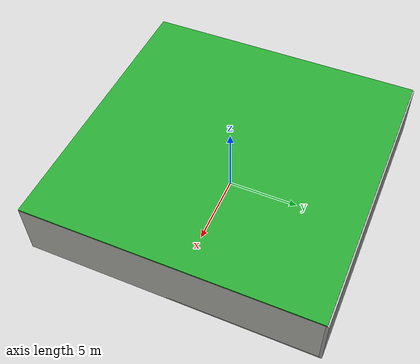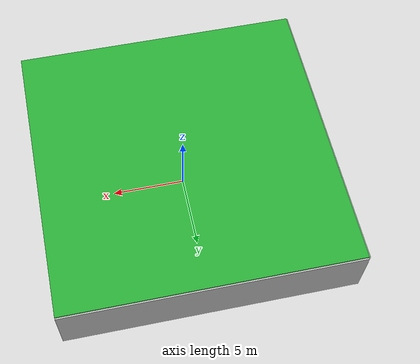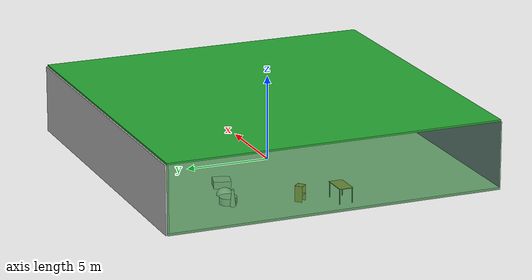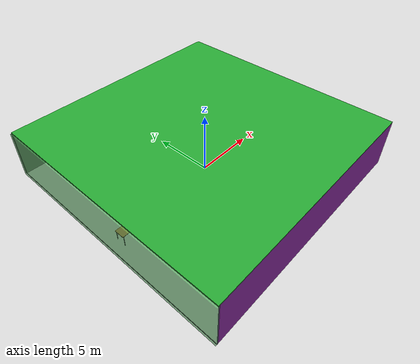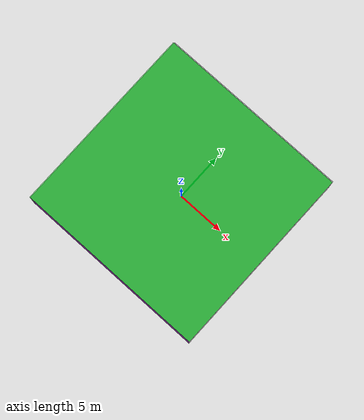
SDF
<sdf version="1.4">
 <world name="default">
  <physics type="ode">
   <max_step_size>0.001</max_step_size>
   <real_time_factor>1</real_time_factor>
   <real_time_update_rate>1000</real_time_update_rate>
   <gravity>0 0 -9.8</gravity>
  </physics>
  <scene><ambient>0.4 0.4 0.4 1</ambient><background>0.7 0.7 0.7 1</background><shadows>1</shadows></scene>
  <model name="Surrounding">
   <static>1</static>
   <link name="Ceiling">
    <collision name="Ceiling_Collision"><geometry><box><size>20 20 0.1</size></box></geometry></collision>
    <visual name="Ceiling_Visual">
     <geometry><box><size>20 20 0.1</size></box></geometry>
     <material>
      <script><uri>file://media/materials/scripts/gazebo.material</uri><name>Gazebo/Green</name></script>
     </material>
    </visual>
    <pose>0 0 4.05 0 0 0</pose>
   </link>
   <link name="Wall_South">
    <collision name="Wall_South_Collision">
     <geometry><box><size>20 0 4</size></box></geometry>
     <pose>0 0 2 0 -0 0</pose>
    </collision>
    <visual name="Wall_South_Visual">
     <pose>0 0 2 0 -0 0</pose>
     <geometry><box><size>20 0 4</size></box></geometry>
     <material>
      <script><uri>file://media/materials/scripts/gazebo.material</uri><name>Gazebo/PurpleGlow</name></script>
     </material>
    </visual>
    <velocity_decay><linear>0</linear><angular>0</angular></velocity_decay>
    <pose>0 -10 0 0 -0 0</pose>
   </link>
   <link name="Wall_East">
    <collision name="Wall_21_Collision">
     <geometry><box><size>20 0 4</size></box></geometry>
     <pose>0 0 2 0 -0 0</pose>
    </collision>
    <visual name="Wall_21_Visual">
     <pose>0 0 2 0 -0 0</pose>
     <geometry><box><size>20 0 4</size></box></geometry>
     <material>
      <script><uri>file://media/materials/scripts/gazebo.material</uri><name>Gazebo/CeilingTiled</name></script>
     </material>
    </visual>
    <velocity_decay><linear>0</linear><angular>0</angular></velocity_decay>
    <pose>10 0 0 0 -0 1.5708</pose>
   </link>
   <link name="Wall_North">
    <collision name="Wall_22_Collision">
     <geometry><box><size>20 0.2 4</size></box></geometry>
     <pose>0 0 2 0 -0 0</pose>
    </collision>
    <visual name="Wall_22_Visual">
     <pose>0 0 2 0 -0 0</pose>
     <geometry><box><size>20 0.2 4</size></box></geometry>
     <material>
      <script><uri>file://media/materials/scripts/gazebo.material</uri><name>Gazebo/LightOn</name></script>
     </material>
    </visual>
    <velocity_decay><linear>0</linear><angular>0</angular></velocity_decay>
    <pose>0 10 0 0 -0 0</pose>
   </link>
   <link name="Wall_West">
    <collision name="Wall_23_Collision">
     <geometry><box><size>20 0.2 4</size></box></geometry>
     <pose>0 0 2 0 -0 0</pose>
    </collision>
    <visual name="Wall_23_Visual">
     <pose>0 0 2 0 -0 0</pose>
     <geometry><box><size>20 0.2 4</size></box></geometry>
     <material>
      <script><uri>file://media/materials/scripts/gazebo.material</uri><name>Gazebo/GreenTransparent</name></script>
     </material>
    </visual>
    <velocity_decay><linear>0</linear><angular>0</angular></velocity_decay>
    <pose>-10 0 0 0 0 -1.5708</pose>
   </link>
   <link name="Ground_link">
    <collision name="collision">
     <pose>0 0 .05 0 -0 0</pose>
     <geometry><box><size>20 20 0.1</size></box></geometry>
    </collision>
    <visual name="visual">
     <pose>0 0 .05 0 -0 0</pose>
     <geometry><box><size>20 20 0.1</size></box></geometry>
     <material>
      <script><uri>file://media/materials/scripts/gazebo.material</uri><name>Gazebo/JointAnchor</name></script>
     </material>
    </visual>
   </link>
   <static>1</static>
  </model>
  <spherical_coordinates>
   <surface_model>EARTH_WGS84</surface_model>
   <latitude_deg>0</latitude_deg>
   <longitude_deg>0</longitude_deg>
   <elevation>0</elevation>
   <heading_deg>0</heading_deg>
  </spherical_coordinates>
  <light name="lightball_0" type="diffuse">
   <diffuse>0.8 0.8 0.8 1</diffuse>
   <specular>0.2 0.2 0.2 1</specular>
   <attenuation>
    <range>100</range>
    <constant>0.7</constant>
    <linear>0.01</linear>
    <quadratic>0.001</quadratic>
   </attenuation>
   <direction>-0.5 0.1 -0.9</direction>
   <pose>-1.20890650081 -3.73436691847 0.515393046193 0 0 0</pose>
  </light>
  <light name="lightball_1" type="diffuse">
   <diffuse>0.8 0.8 0.8 1</diffuse>
   <specular>0.2 0.2 0.2 1</specular>
   <attenuation>
    <range>100</range>
    <constant>0.7</constant>
    <linear>0.01</linear>
    <quadratic>0.001</quadratic>
   </attenuation>
   <direction>-0.5 0.1 -0.9</direction>
   <pose>0.155507447531 9.12810298338 2.90833837039 0 0 0</pose>
  </light>
  <include><uri>model://table</uri><pose>-8.52752826149 -0.870437588901 0 0 0 0.000795488991016</pose></include>
  <include><uri>model://cabinet</uri><pose>-7.78691960371 1.26942140128 0 0 0 0.730052209256</pose></include>
  <include>
   <uri>model://construction_cone</uri>
   <pose>-7.15348303847 5.05274768871 0 0 0 0.737531976425</pose>
  </include>
  <include>
   <uri>model://textured_shapes</uri>
   <pose>-5.1916877066 4.75124941717 0 0 0 1.31263187532</pose>
  </include>
  <include>
   <uri>model://construction_cone</uri>
   <pose>2.25931219414 -5.03261936336 0 0 0 0.502923984623</pose>
  </include>
  <include><uri>model://cabinet</uri><pose>8.45122183762 -6.3227474696 0 0 0 0.47563618193</pose></include>
 </world>
</sdf>

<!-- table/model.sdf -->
<sdf version="1.5">
  <model name="table">
    <static>true</static>
    <link name="link">
      <collision name="surface">
        <pose>0 0 1.0 0 0 0</pose>
        <geometry>
          <box>
            <size>1.5 0.8 0.03</size>
          </box>
        </geometry>
        <surface>
          <friction>
            <ode>
              <mu>0.6</mu>
              <mu2>0.6</mu2>
            </ode>
          </friction>
        </surface>
      </collision>
      <visual name="visual1">
        <pose>0 0 1.0 0 0 0</pose>
        <geometry>
          <box>
            <size>1.5 0.8 0.03</size>
          </box>
        </geometry>
        <material>
          <script>
            <uri>model://media/materials/scripts/gazebo.material</uri>
            <name>Gazebo/Wood</name>
          </script>
        </material>
      </visual>
      <collision name="front_left_leg">
        <pose>0.68 0.38 0.5 0 0 0</pose>
        <geometry>
          <cylinder>
            <radius>0.02</radius>
            <length>1.0</length>
          </cylinder>
        </geometry>
      </collision>
      <visual name="front_left_leg">
        <pose>0.68 0.38 0.5 0 0 0</pose>
        <geometry>
          <cylinder>
            <radius>0.02</radius>
            <length>1.0</length>
          </cylinder>
        </geometry>
        <material>
          <script>
            <uri>model://media/materials/scripts/gazebo.material</uri>
            <name>Gazebo/Grey</name>
          </script>
        </material>
      </visual>
      <collision name="front_right_leg">
        <pose>0.68 -0.38 0.5 0 0 0</pose>
        <geometry>
          <cylinder>
            <radius>0.02</radius>
            <length>1.0</length>
          </cylinder>
        </geometry>
      </collision>
      <visual name="front_right_leg">
        <pose>0.68 -0.38 0.5 0 0 0</pose>
        <geometry>
          <cylinder>
            <radius>0.02</radius>
            <length>1.0</length>
          </cylinder>
        </geometry>
        <material>
          <script>
            <uri>model://media/materials/scripts/gazebo.material</uri>
            <name>Gazebo/Grey</name>
          </script>
        </material>
      </visual>
      <collision name="back_right_leg">
        <pose>-0.68 -0.38 0.5 0 0 0</pose>
        <geometry>
          <cylinder>
            <radius>0.02</radius>
            <length>1.0</length>
          </cylinder>
        </geometry>
      </collision>
      <visual name="back_right_leg">
        <pose>-0.68 -0.38 0.5 0 0 0</pose>
        <geometry>
          <cylinder>
            <radius>0.02</radius>
            <length>1.0</length>
          </cylinder>
        </geometry>
        <material>
          <script>
            <uri>model://media/materials/scripts/gazebo.material</uri>
            <name>Gazebo/Grey</name>
          </script>
        </material>
      </visual>
      <collision name="back_left_leg">
        <pose>-0.68 0.38 0.5 0 0 0</pose>
        <geometry>
          <cylinder>
            <radius>0.02</radius>
            <length>1.0</length>
          </cylinder>
        </geometry>
      </collision>
      <visual name="back_left_leg">
        <pose>-0.68 0.38 0.5 0 0 0</pose>
        <geometry>
          <cylinder>
            <radius>0.02</radius>
            <length>1.0</length>
          </cylinder>
        </geometry>
        <material>
          <script>
            <uri>model://media/materials/scripts/gazebo.material</uri>
            <name>Gazebo/Grey</name>
          </script>
        </material>
      </visual>
    </link>
  </model>
</sdf>

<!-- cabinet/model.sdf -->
<sdf version="1.5">
  <model name="cabinet">
    <static>true</static>
    <link name="cabinet_bottom_plate">
      <inertial>
        <pose>0 0 -1 0 0 0</pose>
        <inertia>
          <ixx>2.050000</ixx>
          <ixy>0</ixy>
          <ixz>0</ixz>
          <iyy>2.050000</iyy>
          <iyz>0</iyz>
          <izz>2.050000</izz>
        </inertia>
        <mass>25.000000</mass>
      </inertial>
      <collision name="cabinet_bottom_plate_geom">
        <pose>0 0 0.010000 0 0 0</pose>
        <geometry>
          <box>
            <size>0.450000 0.450000 0.020000</size>
          </box>
        </geometry>
      </collision>
      <visual name="cabinet_bottom_plate_geom_visual">
        <pose>0 0 0.010000 0 0 0</pose>
        <geometry>
          <box>
            <size>0.450000 0.450000 0.020000</size>
          </box>
        </geometry>
        <material>
          <script>
            <uri>model://media/materials/scripts/gazebo.material</uri>
            <name>Gazebo/Wood</name>
          </script>
        </material>
      </visual>
      <collision name="cabinet_bottom_plate_geom_cabinet_back_plate">
        <pose>0.235000 0 0.510000 0 0 0</pose>
        <geometry>
          <box>
            <size>0.020000 0.450000 1.020000</size>
          </box>
        </geometry>
      </collision>
      <visual name="cabinet_bottom_plate_geom_cabinet_back_plate_visual">
        <pose>0.235000 0 0.510000 0 0 0</pose>
        <geometry>
          <box>
            <size>0.020000 0.450000 1.020000</size>
          </box>
        </geometry>
        <material>
          <script>
            <uri>model://media/materials/scripts/gazebo.material</uri>
            <name>Gazebo/Wood</name>
          </script>
        </material>
      </visual>
      <collision name="cabinet_bottom_plate_geom_cabinet_left_plate">
        <pose>0 0.235000 0.510000 0 0 0</pose>
        <geometry>
          <box>
            <size>0.450000 0.020000 1.020000</size>
          </box>
        </geometry>
      </collision>
      <visual name="cabinet_bottom_plate_geom_cabinet_left_plate_visual">
        <pose>0 0.235000 0.510000 0 0 0</pose>
        <geometry>
          <box>
            <size>0.450000 0.020000 1.020000</size>
          </box>
        </geometry>
        <material>
          <script>
            <uri>model://media/materials/scripts/gazebo.material</uri>
            <name>Gazebo/Wood</name>
          </script>
        </material>
      </visual>
      <collision name="cabinet_bottom_plate_geom_cabinet_middle_plate">
        <pose>0 0 0.510000 0 0 0</pose>
        <geometry>
          <box>
            <size>0.450000 0.450000 0.020000</size>
          </box>
        </geometry>
      </collision>
      <visual name="cabinet_bottom_plate_geom_cabinet_middle_plate_visual">
        <pose>0 0 0.510000 0 0 0</pose>
        <geometry>
          <box>
            <size>0.450000 0.450000 0.020000</size>
          </box>
        </geometry>
        <material>
          <script>
            <uri>model://media/materials/scripts/gazebo.material</uri>
            <name>Gazebo/Wood</name>
          </script>
        </material>
      </visual>
      <collision name="cabinet_bottom_plate_geom_cabinet_right_plate">
        <pose>0 -0.235000 0.510000 0 0 0</pose>
        <geometry>
          <box>
            <size>0.450000 0.020000 1.020000</size>
          </box>
        </geometry>
      </collision>
      <visual name="cabinet_bottom_plate_geom_cabinet_right_plate_visual">
        <pose>0 -0.235000 0.510000 0 0 0</pose>
        <geometry>
          <box>
            <size>0.450000 0.020000 1.020000</size>
          </box>
        </geometry>
        <material>
          <script>
            <uri>model://media/materials/scripts/gazebo.material</uri>
            <name>Gazebo/Wood</name>
          </script>
        </material>
      </visual>
      <collision name="cabinet_bottom_plate_geom_cabinet_top_plate">
        <pose>0 0 1.010000 0 0 0</pose>
        <geometry>
          <box>
            <size>0.450000 0.450000 0.020000</size>
          </box>
        </geometry>
      </collision>
      <visual name="cabinet_bottom_plate_geom_cabinet_top_plate_visual">
        <pose>0 0 1.010000 0 0 0</pose>
        <geometry>
          <box>
            <size>0.450000 0.450000 0.020000</size>
          </box>
        </geometry>
        <material>
          <script>
            <uri>model://media/materials/scripts/gazebo.material</uri>
            <name>Gazebo/Wood</name>
          </script>
        </material>
      </visual>
    </link>
  </model>
</sdf>

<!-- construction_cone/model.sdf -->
<sdf version="1.5">
  <model name="Construction Cone">
    <link name="link">
      <collision name="collision">
        <geometry>
          <mesh>
            <scale>10 10 10</scale>
            <uri>file://isr-testbed/construction_cone/meshes/construction_cone.dae</uri>
          </mesh>
        </geometry>
      </collision>
      <visual name="visual">
        <geometry>
          <mesh>
            <scale>10 10 10</scale>
            <uri>file://isr-testbed/construction_cone/meshes/construction_cone.dae</uri>
          </mesh>
        </geometry>
      </visual>
    </link>
  </model>
</sdf>

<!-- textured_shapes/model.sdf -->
<sdf version="1.6">
  <model name="textured_shapes">
    <pose>0 0 0.5 0 0 0</pose>
    <link name="box">
      <pose>0 -1.5 0 0 0 0</pose>
      <collision name="collision">
        <geometry>
          <box>
            <size>1 1 1</size>
          </box>
        </geometry>
      </collision>
      <visual name="visual">
        <geometry>
          <box>
            <size>1 1 1</size>
          </box>
        </geometry>
        <material>
          <script>
            <uri>model://../model_source/models/textured_shapes/materials/scripts</uri>
            <uri>model://../model_source/models/textured_shapes/materials/textures</uri>
            <name>TexturedShape/Squares</name>
          </script>
        </material>
      </visual>
    </link>
    <link name="sphere">
      <collision name="collision">
        <geometry>
          <sphere>
            <radius>0.5</radius>
          </sphere>
        </geometry>
      </collision>
      <visual name="visual">
        <geometry>
          <sphere>
            <radius>0.5</radius>
          </sphere>
        </geometry>
        <material>
          <script>
            <uri>model://../model_source/models/textured_shapes/materials/scripts</uri>
            <uri>model://../model_source/models/textured_shapes/materials/textures</uri>
            <name>TexturedShape/Squares</name>
          </script>
        </material>
      </visual>
    </link>
    <link name="cylinder">
      <pose>0 1.5 0 0 0 0</pose>
      <collision name="collision">
        <geometry>
          <cylinder>
            <radius>0.5</radius>
            <length>1</length>
          </cylinder>
        </geometry>
      </collision>
      <visual name="visual">
        <geometry>
          <cylinder>
            <radius>0.5</radius>
            <length>1</length>
          </cylinder>
        </geometry>
        <material>
          <script>
            <uri>model://../model_source/models/textured_shapes/materials/scripts</uri>
            <uri>model://../model_source/models/textured_shapes/materials/textures</uri>
            <name>TexturedShape/Squares</name>
          </script>
        </material>
      </visual>
    </link>
  </model>
</sdf>
